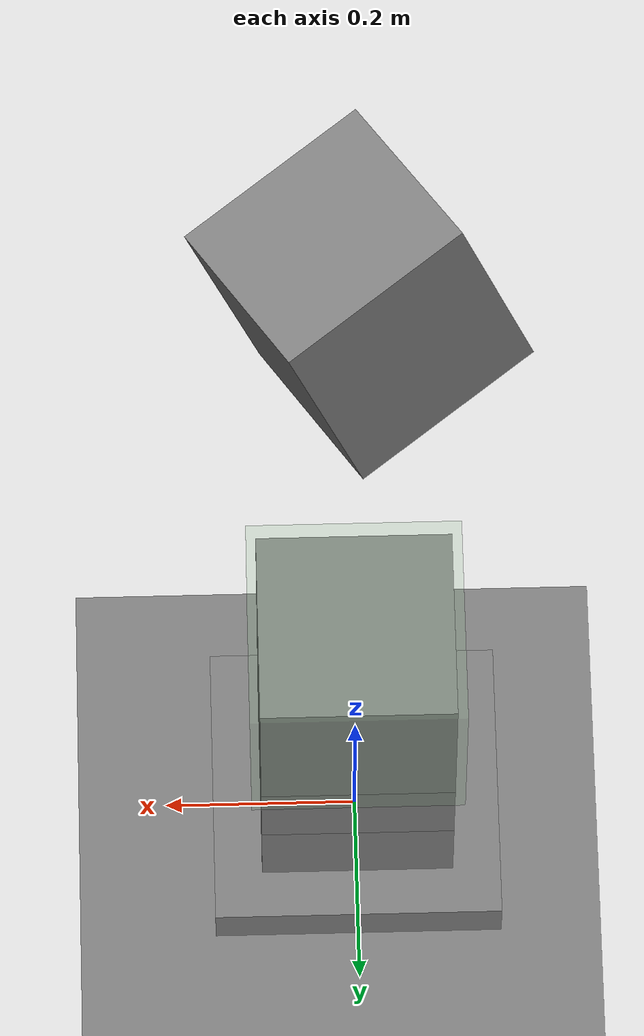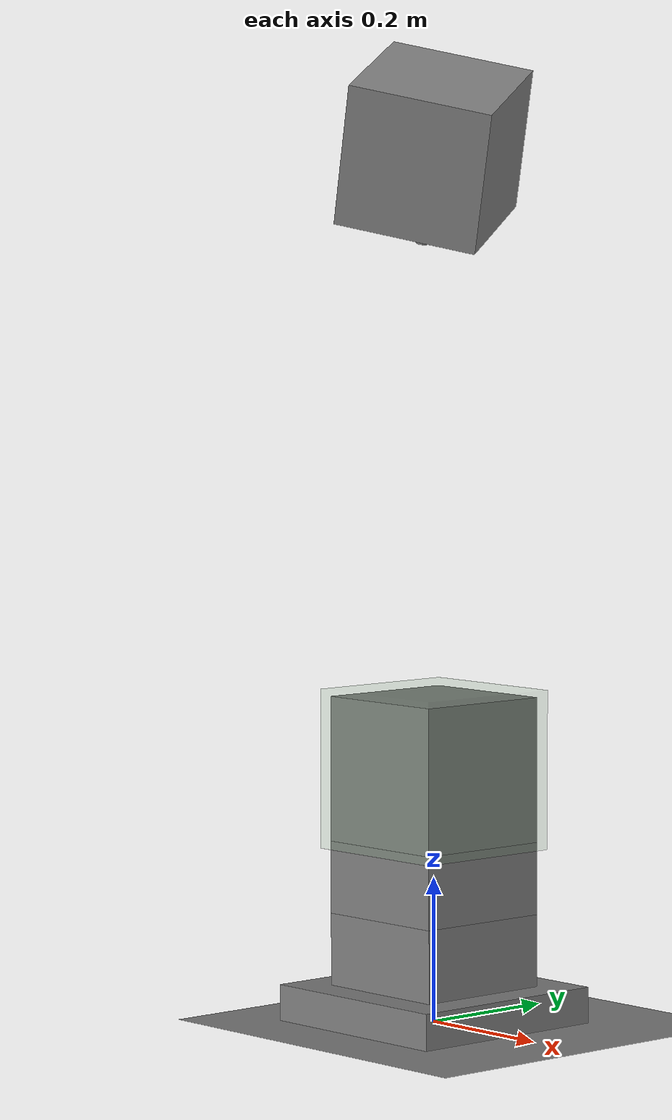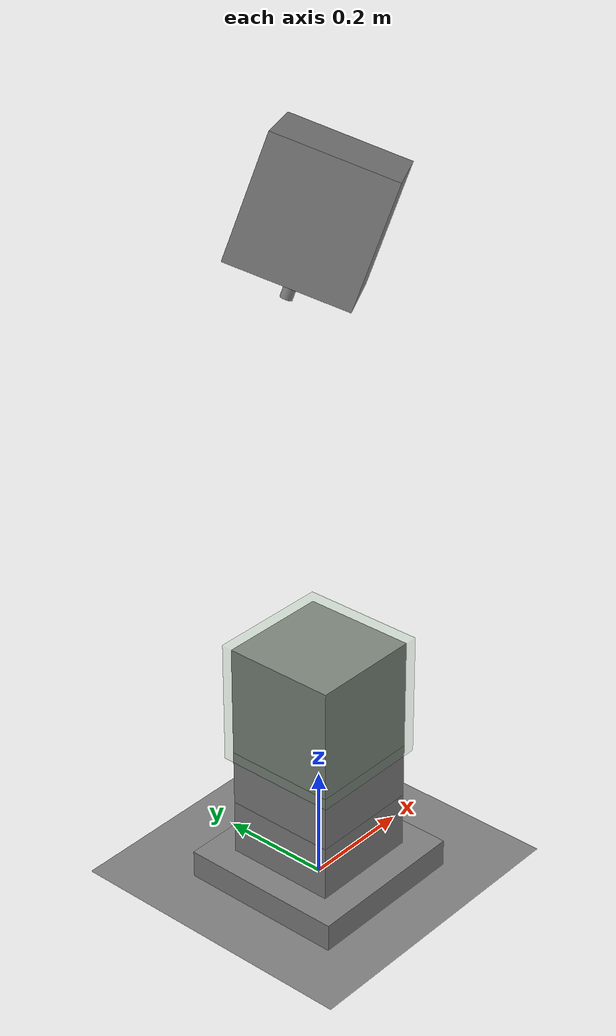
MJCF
<mujoco>
  <custom>
    <numeric name="duration" data="2.0"/>
  </custom>

  <option>
    <flag sleep="enable" warmstart="disable"/>
  </option>

  <worldbody>
    <light pos="0 -1 3"/>
    <geom name="floor" type="plane" size="1 1 .01"/>
     <site name="inside" type="box" size=".5 .5 .5" rgba="0 0 0 0"/>

    <body name="force_static" pos="0 0 .025">
      <geom name="0" type="box" size=".15 .15 .025"/>
      <site name="force_static"/>
    </body>

    <body name="1" pos="0 0 .15">
      <freejoint/>
      <geom name="1" type="box" size=".1 .1 .05" pos="0 0 .05"/>
      <body name="force_dynamic" pos="0 0 -.05">
        <geom name="1_bottom" type="box" size=".1 .1 .05"/>
        <site name="force_dynamic"/>
      </body>
    </body>

    <body name="2" pos="0 0 .35">
      <freejoint/>
      <geom name="2" type="box" size=".1 .1 .1"/>
      <site name="2" type="box" size=".11 .11 .11" rgba=".5 .7 .5 .2"/>
    </body>

    <body name="3" pos="0 0 1.2" euler="10 20 30">
      <freejoint/>
      <geom name="3" type="box" size=".1 .1 .1"/>
      <site name="rf" type="cylinder" size=".01 .03" pos="0 0 -.11" zaxis="0 0 -1"/>
    </body>
  </worldbody>

  <sensor>
    <!-- for most sensors, expect match between sleep enabled/disabled -->
    <contact subtree1="1" geom2="2"/>
    <contact subtree1="1" geom2="2" reduce="maxforce" data="force"/>
    <contact subtree1="1" geom2="floor"/>
    <contact subtree1="1"/>
    <contact subtree1="1" reduce="maxforce" data="force"/>
    <insidesite name="insidesite" site="inside" objtype="body" objname="3"/>
    <framelinvel objtype="body" objname="3"/>
    <framelinvel objtype="body" objname="3" reftype="body" refname="2"/>
    <gyro name="gyro" site="2"/>
    <touch name="touch" site="2"/>
    <clock name="clock"/>
    <rangefinder site="rf"/>
    <force site="force_dynamic"/>

    <!-- sensors marked with user="1": expect mismatch between sleep enabled/disabled -->
    <contact user="1" reduce="maxforce" data="force"/>
    <contact user="1" geom1="floor"/>
    <contact user="1" site="2"/>
    <force   user="1" site="force_static"/>
  </sensor>
</mujoco>
